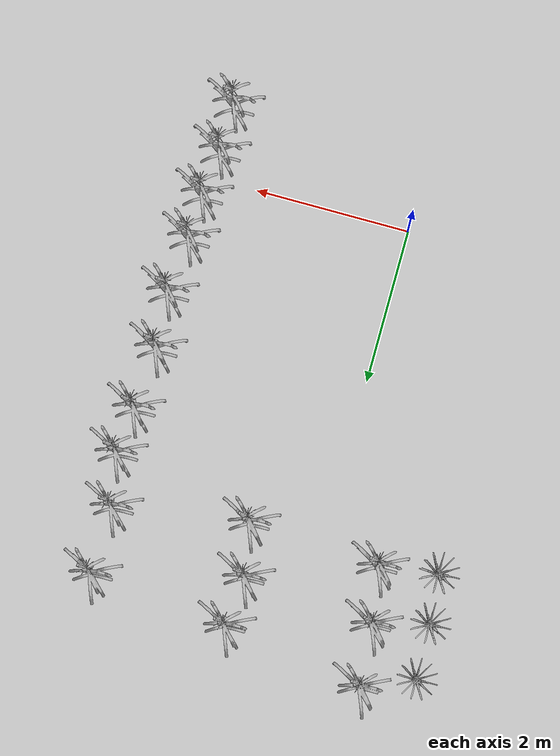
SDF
<sdf version="1.6">
 <world name="default">
  <model name="corn_stalk2">
   <static>1</static>
   <link name="corn_stalk2_link">
    <collision name="collision">
     <geometry><mesh><scale>1 1 1</scale><uri>model://corn_type2/meshes/model.stl</uri></mesh></geometry>
    </collision>
    <visual name="corn_stalk2_visual">
     <geometry><mesh><uri>model://corn_type2/meshes/model.stl</uri><scale>1 1 1</scale></mesh></geometry>
     <material>
      <script>
       <uri>model://corn_type2/materials/scripts</uri>
       <uri>model://corn_type2/materials/textures</uri>
       <name>corn_type2/Diffuse</name>
      </script>
     </material>
    </visual>
   </link>
   <pose>2.5641 -0.891599 0 0 -0 0</pose>
  </model>
  <model name="corn_stalk2_clone">
   <static>1</static>
   <link name="corn_stalk2_link">
    <collision name="collision">
     <geometry><mesh><scale>1 1 1</scale><uri>model://corn_type2/meshes/model.stl</uri></mesh></geometry>
    </collision>
    <visual name="corn_stalk2_visual">
     <geometry><mesh><uri>model://corn_type2/meshes/model.stl</uri><scale>1 1 1</scale></mesh></geometry>
     <material>
      <script>
       <uri>model://corn_type2/materials/scripts</uri>
       <uri>model://corn_type2/materials/textures</uri>
       <name>corn_type2/Diffuse</name>
      </script>
     </material>
    </visual>
   </link>
   <pose>2.577 -0.275854 0 0 -0 0</pose>
  </model>
  <model name="corn_stalk2_clone_0">
   <static>1</static>
   <link name="corn_stalk2_link">
    <collision name="collision">
     <geometry><mesh><scale>1 1 1</scale><uri>model://corn_type2/meshes/model.stl</uri></mesh></geometry>
    </collision>
    <visual name="corn_stalk2_visual">
     <geometry><mesh><uri>model://corn_type2/meshes/model.stl</uri><scale>1 1 1</scale></mesh></geometry>
     <material>
      <script>
       <uri>model://corn_type2/materials/scripts</uri>
       <uri>model://corn_type2/materials/textures</uri>
       <name>corn_type2/Diffuse</name>
      </script>
     </material>
    </visual>
   </link>
   <pose>2.6479 0.317949 0 0 -0 0</pose>
  </model>
  <model name="corn_stalk2_clone_1">
   <static>1</static>
   <link name="corn_stalk2_link">
    <collision name="collision">
     <geometry><mesh><scale>1 1 1</scale><uri>model://corn_type2/meshes/model.stl</uri></mesh></geometry>
    </collision>
    <visual name="corn_stalk2_visual">
     <geometry><mesh><uri>model://corn_type2/meshes/model.stl</uri><scale>1 1 1</scale></mesh></geometry>
     <material>
      <script>
       <uri>model://corn_type2/materials/scripts</uri>
       <uri>model://corn_type2/materials/textures</uri>
       <name>corn_type2/Diffuse</name>
      </script>
     </material>
    </visual>
   </link>
   <pose>2.66289 0.89687 0 0 -0 0</pose>
  </model>
  <model name="corn_stalk2_clone_2">
   <static>1</static>
   <link name="corn_stalk2_link">
    <collision name="collision">
     <geometry><mesh><scale>1 1 1</scale><uri>model://corn_type2/meshes/model.stl</uri></mesh></geometry>
    </collision>
    <visual name="corn_stalk2_visual">
     <geometry><mesh><uri>model://corn_type2/meshes/model.stl</uri><scale>1 1 1</scale></mesh></geometry>
     <material>
      <script>
       <uri>model://corn_type2/materials/scripts</uri>
       <uri>model://corn_type2/materials/textures</uri>
       <name>corn_type2/Diffuse</name>
      </script>
     </material>
    </visual>
   </link>
   <pose>2.73518 1.63182 0 0 -0 0</pose>
  </model>
  <model name="corn_stalk2_clone_3">
   <static>1</static>
   <link name="corn_stalk2_link">
    <collision name="collision">
     <geometry><mesh><scale>1 1 1</scale><uri>model://corn_type2/meshes/model.stl</uri></mesh></geometry>
    </collision>
    <visual name="corn_stalk2_visual">
     <geometry><mesh><uri>model://corn_type2/meshes/model.stl</uri><scale>1 1 1</scale></mesh></geometry>
     <material>
      <script>
       <uri>model://corn_type2/materials/scripts</uri>
       <uri>model://corn_type2/materials/textures</uri>
       <name>corn_type2/Diffuse</name>
      </script>
     </material>
    </visual>
   </link>
   <pose>2.68786 2.35668 0 0 -0 0</pose>
  </model>
  <model name="corn_stalk2_clone_4">
   <static>1</static>
   <link name="corn_stalk2_link">
    <collision name="collision">
     <geometry><mesh><scale>1 1 1</scale><uri>model://corn_type2/meshes/model.stl</uri></mesh></geometry>
    </collision>
    <visual name="corn_stalk2_visual">
     <geometry><mesh><uri>model://corn_type2/meshes/model.stl</uri><scale>1 1 1</scale></mesh></geometry>
     <material>
      <script>
       <uri>model://corn_type2/materials/scripts</uri>
       <uri>model://corn_type2/materials/textures</uri>
       <name>corn_type2/Diffuse</name>
      </script>
     </material>
    </visual>
   </link>
   <pose>2.75213 3.16323 0 0 -0 0</pose>
  </model>
  <model name="corn_stalk2_clone_5">
   <static>1</static>
   <link name="corn_stalk2_link">
    <collision name="collision">
     <geometry><mesh><scale>1 1 1</scale><uri>model://corn_type2/meshes/model.stl</uri></mesh></geometry>
    </collision>
    <visual name="corn_stalk2_visual">
     <geometry><mesh><uri>model://corn_type2/meshes/model.stl</uri><scale>1 1 1</scale></mesh></geometry>
     <material>
      <script>
       <uri>model://corn_type2/materials/scripts</uri>
       <uri>model://corn_type2/materials/textures</uri>
       <name>corn_type2/Diffuse</name>
      </script>
     </material>
    </visual>
   </link>
   <pose>2.8151 3.76385 0 0 -0 0</pose>
  </model>
  <model name="corn_stalk2_clone_6">
   <static>1</static>
   <link name="corn_stalk2_link">
    <collision name="collision">
     <geometry><mesh><scale>1 1 1</scale><uri>model://corn_type2/meshes/model.stl</uri></mesh></geometry>
    </collision>
    <visual name="corn_stalk2_visual">
     <geometry><mesh><uri>model://corn_type2/meshes/model.stl</uri><scale>1 1 1</scale></mesh></geometry>
     <material>
      <script>
       <uri>model://corn_type2/materials/scripts</uri>
       <uri>model://corn_type2/materials/textures</uri>
       <name>corn_type2/Diffuse</name>
      </script>
     </material>
    </visual>
   </link>
   <pose>2.68677 4.43624 0 0 -0 0</pose>
  </model>
  <model name="corn_stalk2_clone_7">
   <static>1</static>
   <link name="corn_stalk2_link">
    <collision name="collision">
     <geometry><mesh><scale>1 1 1</scale><uri>model://corn_type2/meshes/model.stl</uri></mesh></geometry>
    </collision>
    <visual name="corn_stalk2_visual">
     <geometry><mesh><uri>model://corn_type2/meshes/model.stl</uri><scale>1 1 1</scale></mesh></geometry>
     <material>
      <script>
       <uri>model://corn_type2/materials/scripts</uri>
       <uri>model://corn_type2/materials/textures</uri>
       <name>corn_type2/Diffuse</name>
      </script>
     </material>
    </visual>
   </link>
   <pose>2.71829 5.31122 0 0 -0 0</pose>
  </model>
  <model name="corn_stalk2_clone_9">
   <static>1</static>
   <link name="corn_stalk2_link">
    <collision name="collision">
     <geometry><mesh><scale>1 1 1</scale><uri>model://corn_type2/meshes/model.stl</uri></mesh></geometry>
    </collision>
    <visual name="corn_stalk2_visual">
     <geometry><mesh><uri>model://corn_type2/meshes/model.stl</uri><scale>1 1 1</scale></mesh></geometry>
     <material>
      <script>
       <uri>model://corn_type2/materials/scripts</uri>
       <uri>model://corn_type2/materials/textures</uri>
       <name>corn_type2/Diffuse</name>
      </script>
     </material>
    </visual>
   </link>
   <pose>0.974378 4.16962 0 0 -0 0</pose>
  </model>
  <model name="corn_stalk2_clone_10">
   <static>1</static>
   <link name="corn_stalk2_link">
    <collision name="collision">
     <geometry><mesh><scale>1 1 1</scale><uri>model://corn_type2/meshes/model.stl</uri></mesh></geometry>
    </collision>
    <visual name="corn_stalk2_visual">
     <geometry><mesh><uri>model://corn_type2/meshes/model.stl</uri><scale>1 1 1</scale></mesh></geometry>
     <material>
      <script>
       <uri>model://corn_type2/materials/scripts</uri>
       <uri>model://corn_type2/materials/textures</uri>
       <name>corn_type2/Diffuse</name>
      </script>
     </material>
    </visual>
   </link>
   <pose>0.855949 4.85335 0 0 -0 0</pose>
  </model>
  <model name="corn_stalk2_clone_11">
   <static>1</static>
   <link name="corn_stalk2_link">
    <collision name="collision">
     <geometry><mesh><scale>1 1 1</scale><uri>model://corn_type2/meshes/model.stl</uri></mesh></geometry>
    </collision>
    <visual name="corn_stalk2_visual">
     <geometry><mesh><uri>model://corn_type2/meshes/model.stl</uri><scale>1 1 1</scale></mesh></geometry>
     <material>
      <script>
       <uri>model://corn_type2/materials/scripts</uri>
       <uri>model://corn_type2/materials/textures</uri>
       <name>corn_type2/Diffuse</name>
      </script>
     </material>
    </visual>
   </link>
   <pose>0.92706 5.50132 0 0 -0 0</pose>
  </model>
  <model name="corn_stalk2_clone_21">
   <static>1</static>
   <link name="corn_stalk2_link">
    <collision name="collision">
     <geometry><mesh><scale>1 1 1</scale><uri>model://corn_type2/meshes/model.stl</uri></mesh></geometry>
    </collision>
    <visual name="corn_stalk2_visual">
     <geometry><mesh><uri>model://corn_type2/meshes/model.stl</uri><scale>1 1 1</scale></mesh></geometry>
     <material>
      <script>
       <uri>model://corn_type2/materials/scripts</uri>
       <uri>model://corn_type2/materials/textures</uri>
       <name>corn_type2/Diffuse</name>
      </script>
     </material>
    </visual>
   </link>
   <pose>-0.728485 4.27624 0 0 -0 0</pose>
  </model>
  <model name="corn_stalk2_clone_22">
   <static>1</static>
   <link name="corn_stalk2_link">
    <collision name="collision">
     <geometry><mesh><scale>1 1 1</scale><uri>model://corn_type2/meshes/model.stl</uri></mesh></geometry>
    </collision>
    <visual name="corn_stalk2_visual">
     <geometry><mesh><uri>model://corn_type2/meshes/model.stl</uri><scale>1 1 1</scale></mesh></geometry>
     <material>
      <script>
       <uri>model://corn_type2/materials/scripts</uri>
       <uri>model://corn_type2/materials/textures</uri>
       <name>corn_type2/Diffuse</name>
      </script>
     </material>
    </visual>
   </link>
   <pose>-0.842084 4.99972 0 0 -0 0</pose>
  </model>
  <model name="corn_stalk2_clone_23">
   <static>1</static>
   <link name="corn_stalk2_link">
    <collision name="collision">
     <geometry><mesh><scale>1 1 1</scale><uri>model://corn_type2/meshes/model.stl</uri></mesh></geometry>
    </collision>
    <visual name="corn_stalk2_visual">
     <geometry><mesh><uri>model://corn_type2/meshes/model.stl</uri><scale>1 1 1</scale></mesh></geometry>
     <material>
      <script>
       <uri>model://corn_type2/materials/scripts</uri>
       <uri>model://corn_type2/materials/textures</uri>
       <name>corn_type2/Diffuse</name>
      </script>
     </material>
    </visual>
   </link>
   <pose>-0.896948 5.7973 0 0 -0 0</pose>
  </model>
  <model name="bush_clone_3">
   <static>1</static>
   <link name="link">
    <collision name="collision"><geometry><box><size>0.5 0.5 1</size></box></geometry></collision>
    <visual name="visual">
     <geometry><mesh><uri>model://bush_type1/meshes/model.stl</uri><scale>1 1 1</scale></mesh></geometry>
     <material>
      <script>
       <uri>model://bush_type1/materials/scripts</uri>
       <uri>model://bush_type1/materials/textures</uri>
       <name>bush_type1/Diffuse</name>
      </script>
     </material>
    </visual>
   </link>
   <pose>-1.58133 5.48971 0 0 -0 0</pose>
  </model>
  <model name="bush_clone_4">
   <static>1</static>
   <link name="link">
    <collision name="collision"><geometry><box><size>0.5 0.5 1</size></box></geometry></collision>
    <visual name="visual">
     <geometry><mesh><uri>model://bush_type1/meshes/model.stl</uri><scale>1 1 1</scale></mesh></geometry>
     <material>
      <script>
       <uri>model://bush_type1/materials/scripts</uri>
       <uri>model://bush_type1/materials/textures</uri>
       <name>bush_type1/Diffuse</name>
      </script>
     </material>
    </visual>
   </link>
   <pose>-1.5654 4.76997 0 0 -0 0</pose>
  </model>
  <model name="bush_clone_5">
   <static>1</static>
   <link name="link">
    <collision name="collision"><geometry><box><size>0.5 0.5 1</size></box></geometry></collision>
    <visual name="visual">
     <geometry><mesh><uri>model://bush_type1/meshes/model.stl</uri><scale>1 1 1</scale></mesh></geometry>
     <material>
      <script>
       <uri>model://bush_type1/materials/scripts</uri>
       <uri>model://bush_type1/materials/textures</uri>
       <name>bush_type1/Diffuse</name>
      </script>
     </material>
    </visual>
   </link>
   <pose>-1.50578 4.12388 0 0 -0 0</pose>
  </model>
  <model name="ground_plane">
   <static>1</static>
   <link name="link">
    <collision name="collision">
     <geometry><plane><normal>0 0 1</normal><size>100 100</size></plane></geometry>
     <surface><friction><ode><mu>100</mu><mu2>50</mu2></ode></friction></surface>
    </collision>
    <visual name="visual">
     <cast_shadows>0</cast_shadows>
     <geometry><plane><normal>0 0 1</normal><size>100 100</size></plane></geometry>
     <material>
      <script><uri>file://media/materials/scripts/gazebo.material</uri><name>Gazebo/Grey</name></script>
     </material>
    </visual>
   </link>
   <pose>-0.048535 -0.08759 0 0 -0 0</pose>
  </model>
 </world>
</sdf>
